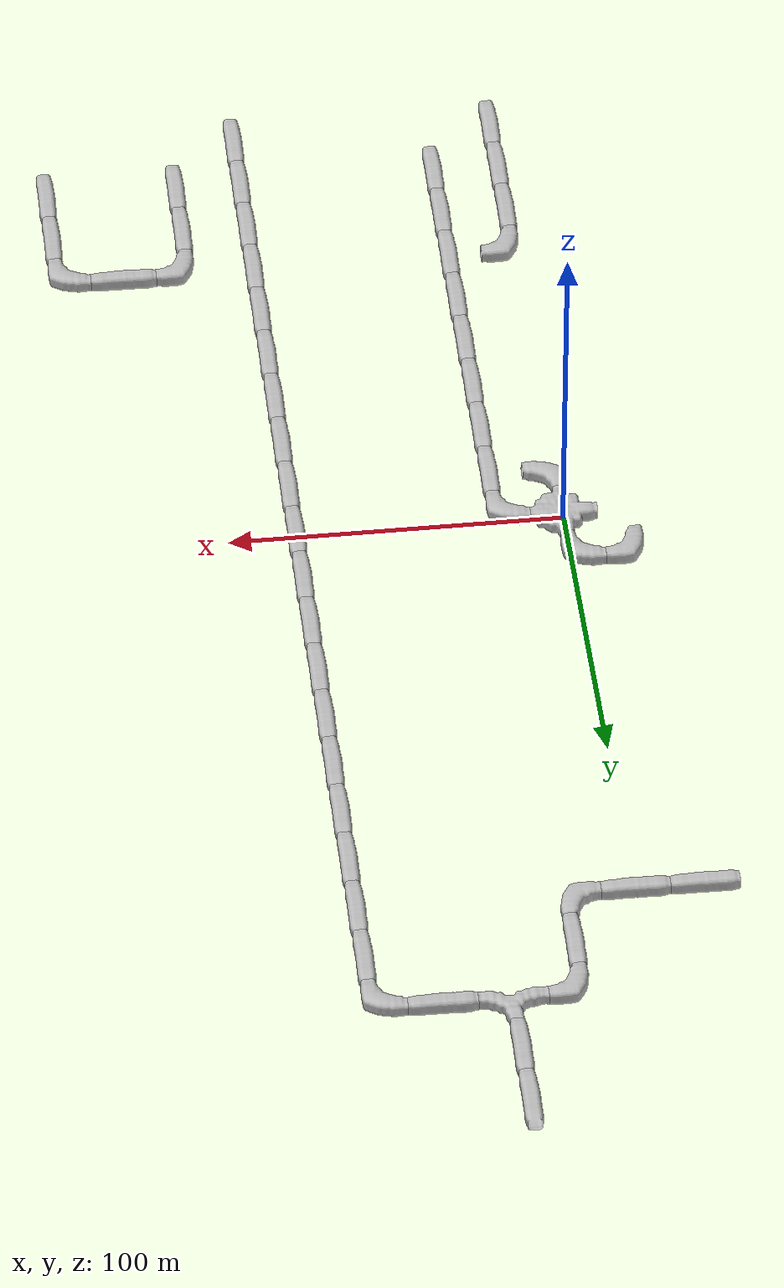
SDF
<sdf version="1.6">
 <world name="cave_8000_8">
  <include>
   <static>true</static>
   <name>cave_0_0</name>
   <pose>0 0 0 0 0 -1.5707963267948966</pose>
   <uri>model://cave_4way_20m</uri>
  </include>
  <include>
   <static>true</static>
   <name>cave_1_0</name>
   <pose>20 0 0 0 0 3.141592653589793</pose>
   <uri>model://cave_L_20m</uri>
  </include>
  <include>
   <static>true</static>
   <name>cave_1_-1</name>
   <pose>20 -20 0 0 0 0.0</pose>
   <uri>model://cave_straight_20m</uri>
  </include>
  <include>
   <static>true</static>
   <name>cave_1_-2</name>
   <pose>20 -40 0 0 0 0.0</pose>
   <uri>model://cave_straight_20m</uri>
  </include>
  <include>
   <static>true</static>
   <name>cave_1_-3</name>
   <pose>20 -60 0 0 0 0.0</pose>
   <uri>model://cave_straight_20m</uri>
  </include>
  <include>
   <static>true</static>
   <name>cave_1_-4</name>
   <pose>20 -80 0 0 0 0.0</pose>
   <uri>model://cave_straight_20m</uri>
  </include>
  <include>
   <static>true</static>
   <name>cave_1_-5</name>
   <pose>20 -100 0 0 0 0.0</pose>
   <uri>model://cave_straight_20m</uri>
  </include>
  <include>
   <static>true</static>
   <name>cave_1_-6</name>
   <pose>20 -120 0 0 0 0.0</pose>
   <uri>model://cave_straight_20m</uri>
  </include>
  <include>
   <static>true</static>
   <name>cave_1_-7</name>
   <pose>20 -140 0 0 0 0.0</pose>
   <uri>model://cave_straight_20m</uri>
  </include>
  <include>
   <static>true</static>
   <name>cave_1_-8</name>
   <pose>20 -160 0 0 0 0.0</pose>
   <uri>model://cave_straight_20m</uri>
  </include>
  <include>
   <static>true</static>
   <name>cave_5_-8</name>
   <pose>100 -160 0 0 0 0.0</pose>
   <uri>model://cave_straight_20m</uri>
  </include>
  <include>
   <static>true</static>
   <name>cave_5_-7</name>
   <pose>100 -140 0 0 0 0.0</pose>
   <uri>model://cave_straight_20m</uri>
  </include>
  <include>
   <static>true</static>
   <name>cave_5_-6</name>
   <pose>100 -120 0 0 0 -1.5707963267948966</pose>
   <uri>model://cave_L_20m</uri>
  </include>
  <include>
   <static>true</static>
   <name>cave_6_-6</name>
   <pose>120 -120 0 0 0 1.5707963267948966</pose>
   <uri>model://cave_straight_20m</uri>
  </include>
  <include>
   <static>true</static>
   <name>cave_7_-6</name>
   <pose>140 -120 0 0 0 3.141592653589793</pose>
   <uri>model://cave_L_20m</uri>
  </include>
  <include>
   <static>true</static>
   <name>cave_7_-7</name>
   <pose>140 -140 0 0 0 0.0</pose>
   <uri>model://cave_straight_20m</uri>
  </include>
  <include>
   <static>true</static>
   <name>cave_7_-8</name>
   <pose>140 -160 0 0 0 0.0</pose>
   <uri>model://cave_straight_20m</uri>
  </include>
  <include>
   <static>true</static>
   <name>cave_4_-9</name>
   <pose>80 -180 0 0 0 0.0</pose>
   <uri>model://cave_straight_20m</uri>
  </include>
  <include>
   <static>true</static>
   <name>cave_4_-8</name>
   <pose>80 -160 0 0 0 0.0</pose>
   <uri>model://cave_straight_20m</uri>
  </include>
  <include>
   <static>true</static>
   <name>cave_4_-7</name>
   <pose>80 -140 0 0 0 0.0</pose>
   <uri>model://cave_straight_20m</uri>
  </include>
  <include>
   <static>true</static>
   <name>cave_4_-6</name>
   <pose>80 -120 0 0 0 0.0</pose>
   <uri>model://cave_straight_20m</uri>
  </include>
  <include>
   <static>true</static>
   <name>cave_4_-5</name>
   <pose>80 -100 0 0 0 0.0</pose>
   <uri>model://cave_straight_20m</uri>
  </include>
  <include>
   <static>true</static>
   <name>cave_4_-4</name>
   <pose>80 -80 0 0 0 0.0</pose>
   <uri>model://cave_straight_20m</uri>
  </include>
  <include>
   <static>true</static>
   <name>cave_4_-3</name>
   <pose>80 -60 0 0 0 0.0</pose>
   <uri>model://cave_straight_20m</uri>
  </include>
  <include>
   <static>true</static>
   <name>cave_4_-2</name>
   <pose>80 -40 0 0 0 0.0</pose>
   <uri>model://cave_straight_20m</uri>
  </include>
  <include>
   <static>true</static>
   <name>cave_4_-1</name>
   <pose>80 -20 0 0 0 0.0</pose>
   <uri>model://cave_straight_20m</uri>
  </include>
  <include>
   <static>true</static>
   <name>cave_4_0</name>
   <pose>80 0 0 0 0 0.0</pose>
   <uri>model://cave_straight_20m</uri>
  </include>
  <include>
   <static>true</static>
   <name>cave_4_1</name>
   <pose>80 20 0 0 0 0.0</pose>
   <uri>model://cave_straight_20m</uri>
  </include>
  <include>
   <static>true</static>
   <name>cave_4_2</name>
   <pose>80 40 0 0 0 0.0</pose>
   <uri>model://cave_straight_20m</uri>
  </include>
  <include>
   <static>true</static>
   <name>cave_4_3</name>
   <pose>80 60 0 0 0 0.0</pose>
   <uri>model://cave_straight_20m</uri>
  </include>
  <include>
   <static>true</static>
   <name>cave_4_4</name>
   <pose>80 80 0 0 0 0.0</pose>
   <uri>model://cave_straight_20m</uri>
  </include>
  <include>
   <static>true</static>
   <name>cave_4_5</name>
   <pose>80 100 0 0 0 0.0</pose>
   <uri>model://cave_straight_20m</uri>
  </include>
  <include>
   <static>true</static>
   <name>cave_4_6</name>
   <pose>80 120 0 0 0 0.0</pose>
   <uri>model://cave_straight_20m</uri>
  </include>
  <include>
   <static>true</static>
   <name>cave_4_7</name>
   <pose>80 140 0 0 0 0.0</pose>
   <uri>model://cave_straight_20m</uri>
  </include>
  <include>
   <static>true</static>
   <name>cave_4_8</name>
   <pose>80 160 0 0 0 0.0</pose>
   <uri>model://cave_straight_20m</uri>
  </include>
  <include>
   <static>true</static>
   <name>cave_4_9</name>
   <pose>80 180 0 0 0 0.0</pose>
   <uri>model://cave_straight_20m</uri>
  </include>
  <include>
   <static>true</static>
   <name>cave_4_10</name>
   <pose>80 200 0 0 0 3.141592653589793</pose>
   <uri>model://cave_L_20m</uri>
  </include>
  <include>
   <static>true</static>
   <name>cave_3_10</name>
   <pose>60 200 0 0 0 1.5707963267948966</pose>
   <uri>model://cave_straight_20m</uri>
  </include>
  <include>
   <static>true</static>
   <name>cave_2_10</name>
   <pose>40 200 0 0 0 0.0</pose>
   <uri>model://cave_3way_20m</uri>
  </include>
  <include>
   <static>true</static>
   <name>cave_1_10</name>
   <pose>20 200 0 0 0 -1.5707963267948966</pose>
   <uri>model://cave_L_20m</uri>
  </include>
  <include>
   <static>true</static>
   <name>cave_1_9</name>
   <pose>20 180 0 0 0 0.0</pose>
   <uri>model://cave_straight_20m</uri>
  </include>
  <include>
   <static>true</static>
   <name>cave_1_8</name>
   <pose>20 160 0 0 0 1.5707963267948966</pose>
   <uri>model://cave_L_20m</uri>
  </include>
  <include>
   <static>true</static>
   <name>cave_0_8</name>
   <pose>0 160 0 0 0 1.5707963267948966</pose>
   <uri>model://cave_straight_20m</uri>
  </include>
  <include>
   <static>true</static>
   <name>cave_-1_8</name>
   <pose>-20 160 0 0 0 1.5707963267948966</pose>
   <uri>model://cave_straight_20m</uri>
  </include>
  <include>
   <static>true</static>
   <name>cave_2_11</name>
   <pose>40 220 0 0 0 0.0</pose>
   <uri>model://cave_straight_20m</uri>
  </include>
  <include>
   <static>true</static>
   <name>cave_2_12</name>
   <pose>40 240 0 0 0 0.0</pose>
   <uri>model://cave_straight_20m</uri>
  </include>
  <include>
   <static>true</static>
   <name>cave_0_-9</name>
   <pose>0 -180 0 0 0 0.0</pose>
   <uri>model://cave_straight_20m</uri>
  </include>
  <include>
   <static>true</static>
   <name>cave_0_-8</name>
   <pose>0 -160 0 0 0 0.0</pose>
   <uri>model://cave_straight_20m</uri>
  </include>
  <include>
   <static>true</static>
   <name>cave_0_-7</name>
   <pose>0 -140 0 0 0 0.0</pose>
   <uri>model://cave_straight_20m</uri>
  </include>
  <include>
   <static>true</static>
   <name>cave_0_-6</name>
   <pose>0 -120 0 0 0 -1.5707963267948966</pose>
   <uri>model://cave_L_20m</uri>
  </include>
  <include>
   <static>true</static>
   <name>cave_0_-1</name>
   <pose>0 -20 0 0 0 0.0</pose>
   <uri>model://cave_L_20m</uri>
  </include>
  <include>
   <static>true</static>
   <name>cave_0_1</name>
   <pose>0 20 0 0 0 3.141592653589793</pose>
   <uri>model://cave_L_20m</uri>
  </include>
  <include>
   <static>true</static>
   <name>cave_-1_1</name>
   <pose>-20 20 0 0 0 -1.5707963267948966</pose>
   <uri>model://cave_L_20m</uri>
  </include>
 </world>
</sdf>
